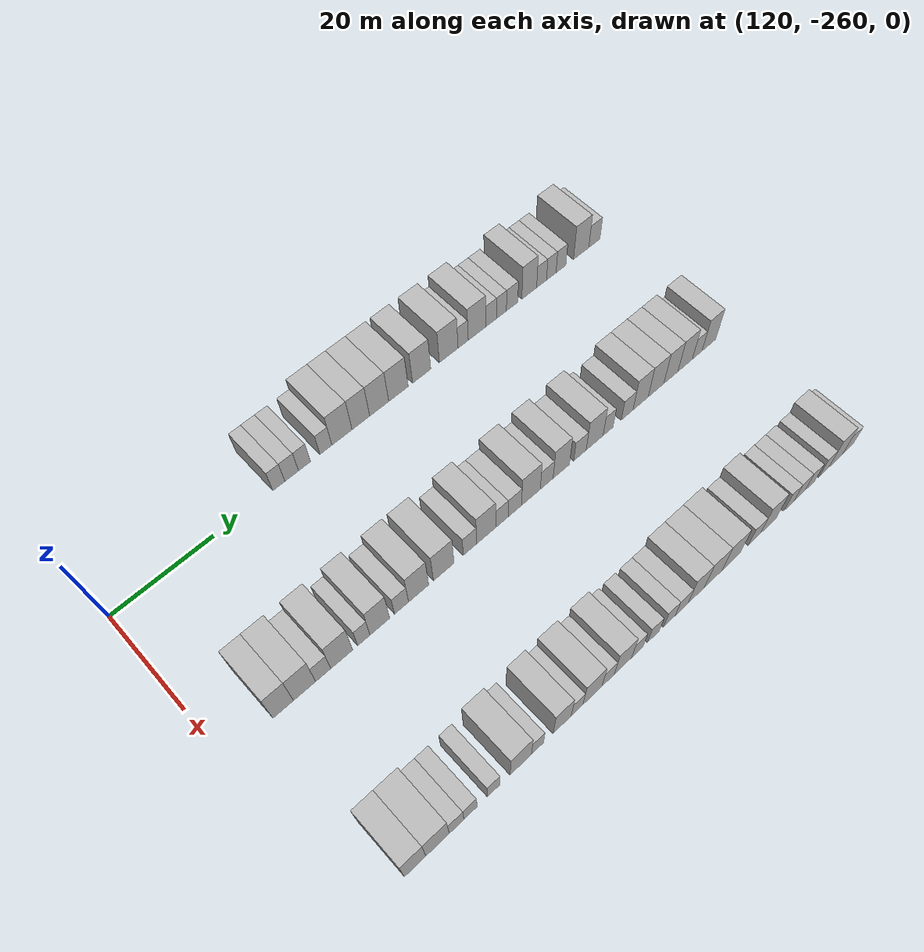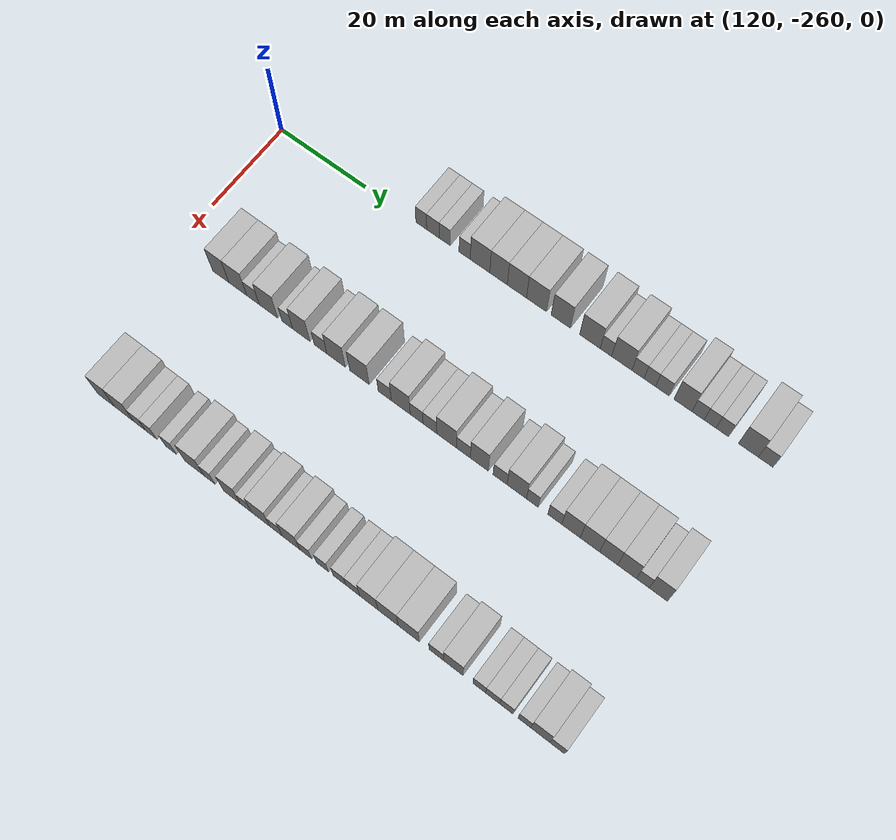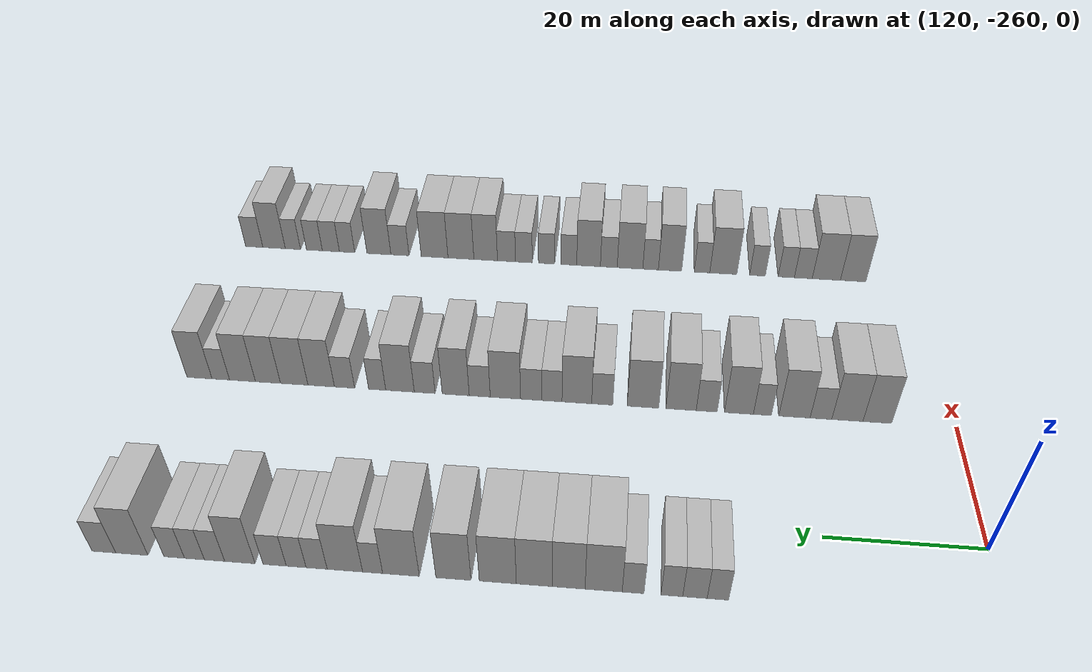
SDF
<sdf version="1.6">
 <world name="default">
  <model name="building_728">
   <static>1</static>
   <pose>115.0000 -226.8545 0 0.000000 0.000000 0.000000</pose>
   <link name="link">
    <pose>0 0 3.00 0 0 0</pose>
    <collision name="collision"><geometry><box><size>10.0000 2.5065 6.0000</size></box></geometry></collision>
    <visual name="visual">
     <cast_shadows>0</cast_shadows>
     <geometry><box><size>10.0000 2.5065 6.0000</size></box></geometry>
     <material>
      <script>
       <uri>model://HANNAS_wall/materials/scripts</uri>
       <uri>model://HANNAS_wall/materials/textures</uri>
       <name>vrc/HANNAS_wall</name>
      </script>
     </material>
    </visual>
   </link>
  </model>
  <model name="building_729">
   <static>1</static>
   <pose>115.0000 -224.1712 0 0.000000 0.000000 0.000000</pose>
   <link name="link">
    <pose>0 0 3.00 0 0 0</pose>
    <collision name="collision"><geometry><box><size>10.0000 2.8600 6.0000</size></box></geometry></collision>
    <visual name="visual">
     <cast_shadows>0</cast_shadows>
     <geometry><box><size>10.0000 2.8600 6.0000</size></box></geometry>
     <material>
      <script>
       <uri>model://HANNAS_wall/materials/scripts</uri>
       <uri>model://HANNAS_wall/materials/textures</uri>
       <name>vrc/HANNAS_wall</name>
      </script>
     </material>
    </visual>
   </link>
  </model>
  <model name="building_730">
   <static>1</static>
   <pose>115.0000 -221.4678 0 0.000000 0.000000 0.000000</pose>
   <link name="link">
    <pose>0 0 3.00 0 0 0</pose>
    <collision name="collision"><geometry><box><size>10.0000 2.5468 6.0000</size></box></geometry></collision>
    <visual name="visual">
     <cast_shadows>0</cast_shadows>
     <geometry><box><size>10.0000 2.5468 6.0000</size></box></geometry>
     <material>
      <script>
       <uri>model://HANNAS_wall/materials/scripts</uri>
       <uri>model://HANNAS_wall/materials/textures</uri>
       <name>vrc/HANNAS_wall</name>
      </script>
     </material>
    </visual>
   </link>
  </model>
  <model name="building_731">
   <static>1</static>
   <pose>115.0000 -216.9096 0 0.000000 0.000000 0.000000</pose>
   <link name="link">
    <pose>0 0 3.00 0 0 0</pose>
    <collision name="collision"><geometry><box><size>10.0000 2.5697 6.0000</size></box></geometry></collision>
    <visual name="visual">
     <cast_shadows>0</cast_shadows>
     <geometry><box><size>10.0000 2.5697 6.0000</size></box></geometry>
     <material>
      <script>
       <uri>model://HANNAS_wall/materials/scripts</uri>
       <uri>model://HANNAS_wall/materials/textures</uri>
       <name>vrc/HANNAS_wall</name>
      </script>
     </material>
    </visual>
   </link>
  </model>
  <model name="building_732">
   <static>1</static>
   <pose>115.0000 -213.4289 0 0.000000 0.000000 0.000000</pose>
   <link name="link">
    <pose>0 0 4.50 0 0 0</pose>
    <collision name="collision"><geometry><box><size>10.0000 4.3916 9.0000</size></box></geometry></collision>
    <visual name="visual">
     <cast_shadows>0</cast_shadows>
     <geometry><box><size>10.0000 4.3916 9.0000</size></box></geometry>
     <material>
      <script>
       <uri>model://HANNAS_wall/materials/scripts</uri>
       <uri>model://HANNAS_wall/materials/textures</uri>
       <name>vrc/HANNAS_wall</name>
      </script>
     </material>
    </visual>
   </link>
  </model>
  <model name="building_733">
   <static>1</static>
   <pose>115.0000 -209.2758 0 0.000000 0.000000 0.000000</pose>
   <link name="link">
    <pose>0 0 4.50 0 0 0</pose>
    <collision name="collision"><geometry><box><size>10.0000 3.9147 9.0000</size></box></geometry></collision>
    <visual name="visual">
     <cast_shadows>0</cast_shadows>
     <geometry><box><size>10.0000 3.9147 9.0000</size></box></geometry>
     <material>
      <script>
       <uri>model://HANNAS_wall/materials/scripts</uri>
       <uri>model://HANNAS_wall/materials/textures</uri>
       <name>vrc/HANNAS_wall</name>
      </script>
     </material>
    </visual>
   </link>
  </model>
  <model name="building_734">
   <static>1</static>
   <pose>115.0000 -205.1833 0 0.000000 0.000000 0.000000</pose>
   <link name="link">
    <pose>0 0 4.50 0 0 0</pose>
    <collision name="collision"><geometry><box><size>10.0000 4.2702 9.0000</size></box></geometry></collision>
    <visual name="visual">
     <cast_shadows>0</cast_shadows>
     <geometry><box><size>10.0000 4.2702 9.0000</size></box></geometry>
     <material>
      <script>
       <uri>model://HANNAS_wall/materials/scripts</uri>
       <uri>model://HANNAS_wall/materials/textures</uri>
       <name>vrc/HANNAS_wall</name>
      </script>
     </material>
    </visual>
   </link>
  </model>
  <model name="building_735">
   <static>1</static>
   <pose>115.0000 -200.8275 0 0.000000 0.000000 0.000000</pose>
   <link name="link">
    <pose>0 0 4.50 0 0 0</pose>
    <collision name="collision"><geometry><box><size>10.0000 4.4414 9.0000</size></box></geometry></collision>
    <visual name="visual">
     <cast_shadows>0</cast_shadows>
     <geometry><box><size>10.0000 4.4414 9.0000</size></box></geometry>
     <material>
      <script>
       <uri>model://HANNAS_wall/materials/scripts</uri>
       <uri>model://HANNAS_wall/materials/textures</uri>
       <name>vrc/HANNAS_wall</name>
      </script>
     </material>
    </visual>
   </link>
  </model>
  <model name="building_736">
   <static>1</static>
   <pose>115.0000 -195.4923 0 0.000000 0.000000 0.000000</pose>
   <link name="link">
    <pose>0 0 4.50 0 0 0</pose>
    <collision name="collision"><geometry><box><size>10.0000 4.2290 9.0000</size></box></geometry></collision>
    <visual name="visual">
     <cast_shadows>0</cast_shadows>
     <geometry><box><size>10.0000 4.2290 9.0000</size></box></geometry>
     <material>
      <script>
       <uri>model://HANNAS_wall/materials/scripts</uri>
       <uri>model://HANNAS_wall/materials/textures</uri>
       <name>vrc/HANNAS_wall</name>
      </script>
     </material>
    </visual>
   </link>
  </model>
  <model name="building_737">
   <static>1</static>
   <pose>115.0000 -189.1521 0 0.000000 0.000000 0.000000</pose>
   <link name="link">
    <pose>0 0 4.50 0 0 0</pose>
    <collision name="collision"><geometry><box><size>10.0000 4.4513 9.0000</size></box></geometry></collision>
    <visual name="visual">
     <cast_shadows>0</cast_shadows>
     <geometry><box><size>10.0000 4.4513 9.0000</size></box></geometry>
     <material>
      <script>
       <uri>model://HANNAS_wall/materials/scripts</uri>
       <uri>model://HANNAS_wall/materials/textures</uri>
       <name>vrc/HANNAS_wall</name>
      </script>
     </material>
    </visual>
   </link>
  </model>
  <model name="building_738">
   <static>1</static>
   <pose>115.0000 -185.7066 0 0.000000 0.000000 0.000000</pose>
   <link name="link">
    <pose>0 0 3.00 0 0 0</pose>
    <collision name="collision"><geometry><box><size>10.0000 2.4397 6.0000</size></box></geometry></collision>
    <visual name="visual">
     <cast_shadows>0</cast_shadows>
     <geometry><box><size>10.0000 2.4397 6.0000</size></box></geometry>
     <material>
      <script>
       <uri>model://HANNAS_wall/materials/scripts</uri>
       <uri>model://HANNAS_wall/materials/textures</uri>
       <name>vrc/HANNAS_wall</name>
      </script>
     </material>
    </visual>
   </link>
  </model>
  <model name="building_739">
   <static>1</static>
   <pose>115.0000 -182.3213 0 0.000000 0.000000 0.000000</pose>
   <link name="link">
    <pose>0 0 4.50 0 0 0</pose>
    <collision name="collision"><geometry><box><size>10.0000 4.3311 9.0000</size></box></geometry></collision>
    <visual name="visual">
     <cast_shadows>0</cast_shadows>
     <geometry><box><size>10.0000 4.3311 9.0000</size></box></geometry>
     <material>
      <script>
       <uri>model://HANNAS_wall/materials/scripts</uri>
       <uri>model://HANNAS_wall/materials/textures</uri>
       <name>vrc/HANNAS_wall</name>
      </script>
     </material>
    </visual>
   </link>
  </model>
  <model name="building_740">
   <static>1</static>
   <pose>115.0000 -178.8613 0 0.000000 0.000000 0.000000</pose>
   <link name="link">
    <pose>0 0 3.00 0 0 0</pose>
    <collision name="collision"><geometry><box><size>10.0000 2.5887 6.0000</size></box></geometry></collision>
    <visual name="visual">
     <cast_shadows>0</cast_shadows>
     <geometry><box><size>10.0000 2.5887 6.0000</size></box></geometry>
     <material>
      <script>
       <uri>model://HANNAS_wall/materials/scripts</uri>
       <uri>model://HANNAS_wall/materials/textures</uri>
       <name>vrc/HANNAS_wall</name>
      </script>
     </material>
    </visual>
   </link>
  </model>
  <model name="building_741">
   <static>1</static>
   <pose>115.0000 -176.3503 0 0.000000 0.000000 0.000000</pose>
   <link name="link">
    <pose>0 0 3.00 0 0 0</pose>
    <collision name="collision"><geometry><box><size>10.0000 2.4334 6.0000</size></box></geometry></collision>
    <visual name="visual">
     <cast_shadows>0</cast_shadows>
     <geometry><box><size>10.0000 2.4334 6.0000</size></box></geometry>
     <material>
      <script>
       <uri>model://HANNAS_wall/materials/scripts</uri>
       <uri>model://HANNAS_wall/materials/textures</uri>
       <name>vrc/HANNAS_wall</name>
      </script>
     </material>
    </visual>
   </link>
  </model>
  <model name="building_742">
   <static>1</static>
   <pose>115.0000 -173.7023 0 0.000000 0.000000 0.000000</pose>
   <link name="link">
    <pose>0 0 3.00 0 0 0</pose>
    <collision name="collision"><geometry><box><size>10.0000 2.8625 6.0000</size></box></geometry></collision>
    <visual name="visual">
     <cast_shadows>0</cast_shadows>
     <geometry><box><size>10.0000 2.8625 6.0000</size></box></geometry>
     <material>
      <script>
       <uri>model://HANNAS_wall/materials/scripts</uri>
       <uri>model://HANNAS_wall/materials/textures</uri>
       <name>vrc/HANNAS_wall</name>
      </script>
     </material>
    </visual>
   </link>
  </model>
  <model name="building_743">
   <static>1</static>
   <pose>115.0000 -169.3935 0 0.000000 0.000000 0.000000</pose>
   <link name="link">
    <pose>0 0 4.50 0 0 0</pose>
    <collision name="collision"><geometry><box><size>10.0000 3.7551 9.0000</size></box></geometry></collision>
    <visual name="visual">
     <cast_shadows>0</cast_shadows>
     <geometry><box><size>10.0000 3.7551 9.0000</size></box></geometry>
     <material>
      <script>
       <uri>model://HANNAS_wall/materials/scripts</uri>
       <uri>model://HANNAS_wall/materials/textures</uri>
       <name>vrc/HANNAS_wall</name>
      </script>
     </material>
    </visual>
   </link>
  </model>
  <model name="building_744">
   <static>1</static>
   <pose>115.0000 -166.2554 0 0.000000 0.000000 0.000000</pose>
   <link name="link">
    <pose>0 0 3.00 0 0 0</pose>
    <collision name="collision"><geometry><box><size>10.0000 2.5211 6.0000</size></box></geometry></collision>
    <visual name="visual">
     <cast_shadows>0</cast_shadows>
     <geometry><box><size>10.0000 2.5211 6.0000</size></box></geometry>
     <material>
      <script>
       <uri>model://HANNAS_wall/materials/scripts</uri>
       <uri>model://HANNAS_wall/materials/textures</uri>
       <name>vrc/HANNAS_wall</name>
      </script>
     </material>
    </visual>
   </link>
  </model>
  <model name="building_745">
   <static>1</static>
   <pose>115.0000 -163.7598 0 0.000000 0.000000 0.000000</pose>
   <link name="link">
    <pose>0 0 3.00 0 0 0</pose>
    <collision name="collision"><geometry><box><size>10.0000 2.4701 6.0000</size></box></geometry></collision>
    <visual name="visual">
     <cast_shadows>0</cast_shadows>
     <geometry><box><size>10.0000 2.4701 6.0000</size></box></geometry>
     <material>
      <script>
       <uri>model://HANNAS_wall/materials/scripts</uri>
       <uri>model://HANNAS_wall/materials/textures</uri>
       <name>vrc/HANNAS_wall</name>
      </script>
     </material>
    </visual>
   </link>
  </model>
  <model name="building_746">
   <static>1</static>
   <pose>115.0000 -161.2407 0 0.000000 0.000000 0.000000</pose>
   <link name="link">
    <pose>0 0 3.00 0 0 0</pose>
    <collision name="collision"><geometry><box><size>10.0000 2.5681 6.0000</size></box></geometry></collision>
    <visual name="visual">
     <cast_shadows>0</cast_shadows>
     <geometry><box><size>10.0000 2.5681 6.0000</size></box></geometry>
     <material>
      <script>
       <uri>model://HANNAS_wall/materials/scripts</uri>
       <uri>model://HANNAS_wall/materials/textures</uri>
       <name>vrc/HANNAS_wall</name>
      </script>
     </material>
    </visual>
   </link>
  </model>
  <model name="building_747">
   <static>1</static>
   <pose>115.0000 -155.9334 0 0.000000 0.000000 0.000000</pose>
   <link name="link">
    <pose>0 0 4.50 0 0 0</pose>
    <collision name="collision"><geometry><box><size>10.0000 4.0466 9.0000</size></box></geometry></collision>
    <visual name="visual">
     <cast_shadows>0</cast_shadows>
     <geometry><box><size>10.0000 4.0466 9.0000</size></box></geometry>
     <material>
      <script>
       <uri>model://HANNAS_wall/materials/scripts</uri>
       <uri>model://HANNAS_wall/materials/textures</uri>
       <name>vrc/HANNAS_wall</name>
      </script>
     </material>
    </visual>
   </link>
  </model>
  <model name="building_748">
   <static>1</static>
   <pose>115.0000 -152.4167 0 0.000000 0.000000 0.000000</pose>
   <link name="link">
    <pose>0 0 3.00 0 0 0</pose>
    <collision name="collision"><geometry><box><size>10.0000 2.9869 6.0000</size></box></geometry></collision>
    <visual name="visual">
     <cast_shadows>0</cast_shadows>
     <geometry><box><size>10.0000 2.9869 6.0000</size></box></geometry>
     <material>
      <script>
       <uri>model://HANNAS_wall/materials/scripts</uri>
       <uri>model://HANNAS_wall/materials/textures</uri>
       <name>vrc/HANNAS_wall</name>
      </script>
     </material>
    </visual>
   </link>
  </model>
  <model name="building_947">
   <static>1</static>
   <pose>145.0000 -249.3122 0 0.000000 0.000000 0.000000</pose>
   <link name="link">
    <pose>0 0 4.50 0 0 0</pose>
    <collision name="collision"><geometry><box><size>10.0000 3.8534 9.0000</size></box></geometry></collision>
    <visual name="visual">
     <cast_shadows>0</cast_shadows>
     <geometry><box><size>10.0000 3.8534 9.0000</size></box></geometry>
     <material>
      <script>
       <uri>model://HANNAS_wall/materials/scripts</uri>
       <uri>model://HANNAS_wall/materials/textures</uri>
       <name>vrc/HANNAS_wall</name>
      </script>
     </material>
    </visual>
   </link>
  </model>
  <model name="building_948">
   <static>1</static>
   <pose>145.0000 -245.2798 0 0.000000 0.000000 0.000000</pose>
   <link name="link">
    <pose>0 0 4.50 0 0 0</pose>
    <collision name="collision"><geometry><box><size>10.0000 4.2114 9.0000</size></box></geometry></collision>
    <visual name="visual">
     <cast_shadows>0</cast_shadows>
     <geometry><box><size>10.0000 4.2114 9.0000</size></box></geometry>
     <material>
      <script>
       <uri>model://HANNAS_wall/materials/scripts</uri>
       <uri>model://HANNAS_wall/materials/textures</uri>
       <name>vrc/HANNAS_wall</name>
      </script>
     </material>
    </visual>
   </link>
  </model>
  <model name="building_949">
   <static>1</static>
   <pose>145.0000 -241.7076 0 0.000000 0.000000 0.000000</pose>
   <link name="link">
    <pose>0 0 3.00 0 0 0</pose>
    <collision name="collision"><geometry><box><size>10.0000 2.9330 6.0000</size></box></geometry></collision>
    <visual name="visual">
     <cast_shadows>0</cast_shadows>
     <geometry><box><size>10.0000 2.9330 6.0000</size></box></geometry>
     <material>
      <script>
       <uri>model://HANNAS_wall/materials/scripts</uri>
       <uri>model://HANNAS_wall/materials/textures</uri>
       <name>vrc/HANNAS_wall</name>
      </script>
     </material>
    </visual>
   </link>
  </model>
  <model name="building_950">
   <static>1</static>
   <pose>145.0000 -238.1058 0 0.000000 0.000000 0.000000</pose>
   <link name="link">
    <pose>0 0 4.50 0 0 0</pose>
    <collision name="collision"><geometry><box><size>10.0000 4.2708 9.0000</size></box></geometry></collision>
    <visual name="visual">
     <cast_shadows>0</cast_shadows>
     <geometry><box><size>10.0000 4.2708 9.0000</size></box></geometry>
     <material>
      <script>
       <uri>model://HANNAS_wall/materials/scripts</uri>
       <uri>model://HANNAS_wall/materials/textures</uri>
       <name>vrc/HANNAS_wall</name>
      </script>
     </material>
    </visual>
   </link>
  </model>
  <model name="building_951">
   <static>1</static>
   <pose>145.0000 -233.7447 0 0.000000 0.000000 0.000000</pose>
   <link name="link">
    <pose>0 0 3.00 0 0 0</pose>
    <collision name="collision"><geometry><box><size>10.0000 2.4513 6.0000</size></box></geometry></collision>
    <visual name="visual">
     <cast_shadows>0</cast_shadows>
     <geometry><box><size>10.0000 2.4513 6.0000</size></box></geometry>
     <material>
      <script>
       <uri>model://HANNAS_wall/materials/scripts</uri>
       <uri>model://HANNAS_wall/materials/textures</uri>
       <name>vrc/HANNAS_wall</name>
      </script>
     </material>
    </visual>
   </link>
  </model>
  <model name="building_952">
   <static>1</static>
   <pose>145.0000 -230.5343 0 0.000000 0.000000 0.000000</pose>
   <link name="link">
    <pose>0 0 4.50 0 0 0</pose>
    <collision name="collision"><geometry><box><size>10.0000 3.9695 9.0000</size></box></geometry></collision>
    <visual name="visual">
     <cast_shadows>0</cast_shadows>
     <geometry><box><size>10.0000 3.9695 9.0000</size></box></geometry>
     <material>
      <script>
       <uri>model://HANNAS_wall/materials/scripts</uri>
       <uri>model://HANNAS_wall/materials/textures</uri>
       <name>vrc/HANNAS_wall</name>
      </script>
     </material>
    </visual>
   </link>
  </model>
  <model name="building_953">
   <static>1</static>
   <pose>145.0000 -226.1108 0 0.000000 0.000000 0.000000</pose>
   <link name="link">
    <pose>0 0 3.00 0 0 0</pose>
    <collision name="collision"><geometry><box><size>10.0000 2.8775 6.0000</size></box></geometry></collision>
    <visual name="visual">
     <cast_shadows>0</cast_shadows>
     <geometry><box><size>10.0000 2.8775 6.0000</size></box></geometry>
     <material>
      <script>
       <uri>model://HANNAS_wall/materials/scripts</uri>
       <uri>model://HANNAS_wall/materials/textures</uri>
       <name>vrc/HANNAS_wall</name>
      </script>
     </material>
    </visual>
   </link>
  </model>
  <model name="building_954">
   <static>1</static>
   <pose>145.0000 -222.5853 0 0.000000 0.000000 0.000000</pose>
   <link name="link">
    <pose>0 0 4.50 0 0 0</pose>
    <collision name="collision"><geometry><box><size>10.0000 4.1735 9.0000</size></box></geometry></collision>
    <visual name="visual">
     <cast_shadows>0</cast_shadows>
     <geometry><box><size>10.0000 4.1735 9.0000</size></box></geometry>
     <material>
      <script>
       <uri>model://HANNAS_wall/materials/scripts</uri>
       <uri>model://HANNAS_wall/materials/textures</uri>
       <name>vrc/HANNAS_wall</name>
      </script>
     </material>
    </visual>
   </link>
  </model>
  <model name="building_955">
   <static>1</static>
   <pose>145.0000 -217.3175 0 0.000000 0.000000 0.000000</pose>
   <link name="link">
    <pose>0 0 4.50 0 0 0</pose>
    <collision name="collision"><geometry><box><size>10.0000 4.3621 9.0000</size></box></geometry></collision>
    <visual name="visual">
     <cast_shadows>0</cast_shadows>
     <geometry><box><size>10.0000 4.3621 9.0000</size></box></geometry>
     <material>
      <script>
       <uri>model://HANNAS_wall/materials/scripts</uri>
       <uri>model://HANNAS_wall/materials/textures</uri>
       <name>vrc/HANNAS_wall</name>
      </script>
     </material>
    </visual>
   </link>
  </model>
  <model name="building_956">
   <static>1</static>
   <pose>145.0000 -211.6747 0 0.000000 0.000000 0.000000</pose>
   <link name="link">
    <pose>0 0 3.00 0 0 0</pose>
    <collision name="collision"><geometry><box><size>10.0000 2.9234 6.0000</size></box></geometry></collision>
    <visual name="visual">
     <cast_shadows>0</cast_shadows>
     <geometry><box><size>10.0000 2.9234 6.0000</size></box></geometry>
     <material>
      <script>
       <uri>model://HANNAS_wall/materials/scripts</uri>
       <uri>model://HANNAS_wall/materials/textures</uri>
       <name>vrc/HANNAS_wall</name>
      </script>
     </material>
    </visual>
   </link>
  </model>
  <model name="building_957">
   <static>1</static>
   <pose>145.0000 -208.1396 0 0.000000 0.000000 0.000000</pose>
   <link name="link">
    <pose>0 0 4.50 0 0 0</pose>
    <collision name="collision"><geometry><box><size>10.0000 4.1469 9.0000</size></box></geometry></collision>
    <visual name="visual">
     <cast_shadows>0</cast_shadows>
     <geometry><box><size>10.0000 4.1469 9.0000</size></box></geometry>
     <material>
      <script>
       <uri>model://HANNAS_wall/materials/scripts</uri>
       <uri>model://HANNAS_wall/materials/textures</uri>
       <name>vrc/HANNAS_wall</name>
      </script>
     </material>
    </visual>
   </link>
  </model>
  <model name="building_958">
   <static>1</static>
   <pose>145.0000 -204.6657 0 0.000000 0.000000 0.000000</pose>
   <link name="link">
    <pose>0 0 3.00 0 0 0</pose>
    <collision name="collision"><geometry><box><size>10.0000 2.8011 6.0000</size></box></geometry></collision>
    <visual name="visual">
     <cast_shadows>0</cast_shadows>
     <geometry><box><size>10.0000 2.8011 6.0000</size></box></geometry>
     <material>
      <script>
       <uri>model://HANNAS_wall/materials/scripts</uri>
       <uri>model://HANNAS_wall/materials/textures</uri>
       <name>vrc/HANNAS_wall</name>
      </script>
     </material>
    </visual>
   </link>
  </model>
  <model name="building_959">
   <static>1</static>
   <pose>145.0000 -201.7667 0 0.000000 0.000000 0.000000</pose>
   <link name="link">
    <pose>0 0 3.00 0 0 0</pose>
    <collision name="collision"><geometry><box><size>10.0000 2.9969 6.0000</size></box></geometry></collision>
    <visual name="visual">
     <cast_shadows>0</cast_shadows>
     <geometry><box><size>10.0000 2.9969 6.0000</size></box></geometry>
     <material>
      <script>
       <uri>model://HANNAS_wall/materials/scripts</uri>
       <uri>model://HANNAS_wall/materials/textures</uri>
       <name>vrc/HANNAS_wall</name>
      </script>
     </material>
    </visual>
   </link>
  </model>
  <model name="building_960">
   <static>1</static>
   <pose>145.0000 -198.1296 0 0.000000 0.000000 0.000000</pose>
   <link name="link">
    <pose>0 0 4.50 0 0 0</pose>
    <collision name="collision"><geometry><box><size>10.0000 4.2773 9.0000</size></box></geometry></collision>
    <visual name="visual">
     <cast_shadows>0</cast_shadows>
     <geometry><box><size>10.0000 4.2773 9.0000</size></box></geometry>
     <material>
      <script>
       <uri>model://HANNAS_wall/materials/scripts</uri>
       <uri>model://HANNAS_wall/materials/textures</uri>
       <name>vrc/HANNAS_wall</name>
      </script>
     </material>
    </visual>
   </link>
  </model>
  <model name="building_961">
   <static>1</static>
   <pose>145.0000 -194.5088 0 0.000000 0.000000 0.000000</pose>
   <link name="link">
    <pose>0 0 3.00 0 0 0</pose>
    <collision name="collision"><geometry><box><size>10.0000 2.9643 6.0000</size></box></geometry></collision>
    <visual name="visual">
     <cast_shadows>0</cast_shadows>
     <geometry><box><size>10.0000 2.9643 6.0000</size></box></geometry>
     <material>
      <script>
       <uri>model://HANNAS_wall/materials/scripts</uri>
       <uri>model://HANNAS_wall/materials/textures</uri>
       <name>vrc/HANNAS_wall</name>
      </script>
     </material>
    </visual>
   </link>
  </model>
  <model name="building_962">
   <static>1</static>
   <pose>145.0000 -191.1102 0 0.000000 0.000000 0.000000</pose>
   <link name="link">
    <pose>0 0 4.50 0 0 0</pose>
    <collision name="collision"><geometry><box><size>10.0000 3.8329 9.0000</size></box></geometry></collision>
    <visual name="visual">
     <cast_shadows>0</cast_shadows>
     <geometry><box><size>10.0000 3.8329 9.0000</size></box></geometry>
     <material>
      <script>
       <uri>model://HANNAS_wall/materials/scripts</uri>
       <uri>model://HANNAS_wall/materials/textures</uri>
       <name>vrc/HANNAS_wall</name>
      </script>
     </material>
    </visual>
   </link>
  </model>
  <model name="building_963">
   <static>1</static>
   <pose>145.0000 -186.7130 0 0.000000 0.000000 0.000000</pose>
   <link name="link">
    <pose>0 0 3.00 0 0 0</pose>
    <collision name="collision"><geometry><box><size>10.0000 2.9615 6.0000</size></box></geometry></collision>
    <visual name="visual">
     <cast_shadows>0</cast_shadows>
     <geometry><box><size>10.0000 2.9615 6.0000</size></box></geometry>
     <material>
      <script>
       <uri>model://HANNAS_wall/materials/scripts</uri>
       <uri>model://HANNAS_wall/materials/textures</uri>
       <name>vrc/HANNAS_wall</name>
      </script>
     </material>
    </visual>
   </link>
  </model>
  <model name="building_964">
   <static>1</static>
   <pose>145.0000 -183.1933 0 0.000000 0.000000 0.000000</pose>
   <link name="link">
    <pose>0 0 4.50 0 0 0</pose>
    <collision name="collision"><geometry><box><size>10.0000 4.0777 9.0000</size></box></geometry></collision>
    <visual name="visual">
     <cast_shadows>0</cast_shadows>
     <geometry><box><size>10.0000 4.0777 9.0000</size></box></geometry>
     <material>
      <script>
       <uri>model://HANNAS_wall/materials/scripts</uri>
       <uri>model://HANNAS_wall/materials/textures</uri>
       <name>vrc/HANNAS_wall</name>
      </script>
     </material>
    </visual>
   </link>
  </model>
  <model name="building_965">
   <static>1</static>
   <pose>145.0000 -179.9291 0 0.000000 0.000000 0.000000</pose>
   <link name="link">
    <pose>0 0 3.00 0 0 0</pose>
    <collision name="collision"><geometry><box><size>10.0000 2.4507 6.0000</size></box></geometry></collision>
    <visual name="visual">
     <cast_shadows>0</cast_shadows>
     <geometry><box><size>10.0000 2.4507 6.0000</size></box></geometry>
     <material>
      <script>
       <uri>model://HANNAS_wall/materials/scripts</uri>
       <uri>model://HANNAS_wall/materials/textures</uri>
       <name>vrc/HANNAS_wall</name>
      </script>
     </material>
    </visual>
   </link>
  </model>
  <model name="building_966">
   <static>1</static>
   <pose>145.0000 -175.2535 0 0.000000 0.000000 0.000000</pose>
   <link name="link">
    <pose>0 0 3.00 0 0 0</pose>
    <collision name="collision"><geometry><box><size>10.0000 2.9005 6.0000</size></box></geometry></collision>
    <visual name="visual">
     <cast_shadows>0</cast_shadows>
     <geometry><box><size>10.0000 2.9005 6.0000</size></box></geometry>
     <material>
      <script>
       <uri>model://HANNAS_wall/materials/scripts</uri>
       <uri>model://HANNAS_wall/materials/textures</uri>
       <name>vrc/HANNAS_wall</name>
      </script>
     </material>
    </visual>
   </link>
  </model>
  <model name="building_967">
   <static>1</static>
   <pose>145.0000 -171.8946 0 0.000000 0.000000 0.000000</pose>
   <link name="link">
    <pose>0 0 4.50 0 0 0</pose>
    <collision name="collision"><geometry><box><size>10.0000 3.8172 9.0000</size></box></geometry></collision>
    <visual name="visual">
     <cast_shadows>0</cast_shadows>
     <geometry><box><size>10.0000 3.8172 9.0000</size></box></geometry>
     <material>
      <script>
       <uri>model://HANNAS_wall/materials/scripts</uri>
       <uri>model://HANNAS_wall/materials/textures</uri>
       <name>vrc/HANNAS_wall</name>
      </script>
     </material>
    </visual>
   </link>
  </model>
  <model name="building_968">
   <static>1</static>
   <pose>145.0000 -167.9979 0 0.000000 0.000000 0.000000</pose>
   <link name="link">
    <pose>0 0 4.50 0 0 0</pose>
    <collision name="collision"><geometry><box><size>10.0000 3.9762 9.0000</size></box></geometry></collision>
    <visual name="visual">
     <cast_shadows>0</cast_shadows>
     <geometry><box><size>10.0000 3.9762 9.0000</size></box></geometry>
     <material>
      <script>
       <uri>model://HANNAS_wall/materials/scripts</uri>
       <uri>model://HANNAS_wall/materials/textures</uri>
       <name>vrc/HANNAS_wall</name>
      </script>
     </material>
    </visual>
   </link>
  </model>
  <model name="building_969">
   <static>1</static>
   <pose>145.0000 -164.1916 0 0.000000 0.000000 0.000000</pose>
   <link name="link">
    <pose>0 0 4.50 0 0 0</pose>
    <collision name="collision"><geometry><box><size>10.0000 3.6365 9.0000</size></box></geometry></collision>
    <visual name="visual">
     <cast_shadows>0</cast_shadows>
     <geometry><box><size>10.0000 3.6365 9.0000</size></box></geometry>
     <material>
      <script>
       <uri>model://HANNAS_wall/materials/scripts</uri>
       <uri>model://HANNAS_wall/materials/textures</uri>
       <name>vrc/HANNAS_wall</name>
      </script>
     </material>
    </visual>
   </link>
  </model>
  <model name="building_970">
   <static>1</static>
   <pose>145.0000 -160.4905 0 0.000000 0.000000 0.000000</pose>
   <link name="link">
    <pose>0 0 4.50 0 0 0</pose>
    <collision name="collision"><geometry><box><size>10.0000 3.7656 9.0000</size></box></geometry></collision>
    <visual name="visual">
     <cast_shadows>0</cast_shadows>
     <geometry><box><size>10.0000 3.7656 9.0000</size></box></geometry>
     <material>
      <script>
       <uri>model://HANNAS_wall/materials/scripts</uri>
       <uri>model://HANNAS_wall/materials/textures</uri>
       <name>vrc/HANNAS_wall</name>
      </script>
     </material>
    </visual>
   </link>
  </model>
  <model name="building_971">
   <static>1</static>
   <pose>145.0000 -157.3275 0 0.000000 0.000000 0.000000</pose>
   <link name="link">
    <pose>0 0 3.00 0 0 0</pose>
    <collision name="collision"><geometry><box><size>10.0000 2.5606 6.0000</size></box></geometry></collision>
    <visual name="visual">
     <cast_shadows>0</cast_shadows>
     <geometry><box><size>10.0000 2.5606 6.0000</size></box></geometry>
     <material>
      <script>
       <uri>model://HANNAS_wall/materials/scripts</uri>
       <uri>model://HANNAS_wall/materials/textures</uri>
       <name>vrc/HANNAS_wall</name>
      </script>
     </material>
    </visual>
   </link>
  </model>
  <model name="building_972">
   <static>1</static>
   <pose>145.0000 -154.2218 0 0.000000 0.000000 0.000000</pose>
   <link name="link">
    <pose>0 0 4.50 0 0 0</pose>
    <collision name="collision"><geometry><box><size>10.0000 3.6507 9.0000</size></box></geometry></collision>
    <visual name="visual">
     <cast_shadows>0</cast_shadows>
     <geometry><box><size>10.0000 3.6507 9.0000</size></box></geometry>
     <material>
      <script>
       <uri>model://HANNAS_wall/materials/scripts</uri>
       <uri>model://HANNAS_wall/materials/textures</uri>
       <name>vrc/HANNAS_wall</name>
      </script>
     </material>
    </visual>
   </link>
  </model>
  <model name="building_1169">
   <static>1</static>
   <pose>175.0000 -249.6092 0 0.000000 0.000000 0.000000</pose>
   <link name="link">
    <pose>0 0 4.50 0 0 0</pose>
    <collision name="collision"><geometry><box><size>10.0000 3.9388 9.0000</size></box></geometry></collision>
    <visual name="visual">
     <cast_shadows>0</cast_shadows>
     <geometry><box><size>10.0000 3.9388 9.0000</size></box></geometry>
     <material>
      <script>
       <uri>model://HANNAS_wall/materials/scripts</uri>
       <uri>model://HANNAS_wall/materials/textures</uri>
       <name>vrc/HANNAS_wall</name>
      </script>
     </material>
    </visual>
   </link>
  </model>
  <model name="building_1170">
   <static>1</static>
   <pose>175.0000 -245.4431 0 0.000000 0.000000 0.000000</pose>
   <link name="link">
    <pose>0 0 4.50 0 0 0</pose>
    <collision name="collision"><geometry><box><size>10.0000 4.3932 9.0000</size></box></geometry></collision>
    <visual name="visual">
     <cast_shadows>0</cast_shadows>
     <geometry><box><size>10.0000 4.3932 9.0000</size></box></geometry>
     <material>
      <script>
       <uri>model://HANNAS_wall/materials/scripts</uri>
       <uri>model://HANNAS_wall/materials/textures</uri>
       <name>vrc/HANNAS_wall</name>
      </script>
     </material>
    </visual>
   </link>
  </model>
  <model name="building_1171">
   <static>1</static>
   <pose>175.0000 -241.8541 0 0.000000 0.000000 0.000000</pose>
   <link name="link">
    <pose>0 0 3.00 0 0 0</pose>
    <collision name="collision"><geometry><box><size>10.0000 2.7849 6.0000</size></box></geometry></collision>
    <visual name="visual">
     <cast_shadows>0</cast_shadows>
     <geometry><box><size>10.0000 2.7849 6.0000</size></box></geometry>
     <material>
      <script>
       <uri>model://HANNAS_wall/materials/scripts</uri>
       <uri>model://HANNAS_wall/materials/textures</uri>
       <name>vrc/HANNAS_wall</name>
      </script>
     </material>
    </visual>
   </link>
  </model>
  <model name="building_1172">
   <static>1</static>
   <pose>175.0000 -239.1870 0 0.000000 0.000000 0.000000</pose>
   <link name="link">
    <pose>0 0 3.00 0 0 0</pose>
    <collision name="collision"><geometry><box><size>10.0000 2.5493 6.0000</size></box></geometry></collision>
    <visual name="visual">
     <cast_shadows>0</cast_shadows>
     <geometry><box><size>10.0000 2.5493 6.0000</size></box></geometry>
     <material>
      <script>
       <uri>model://HANNAS_wall/materials/scripts</uri>
       <uri>model://HANNAS_wall/materials/textures</uri>
       <name>vrc/HANNAS_wall</name>
      </script>
     </material>
    </visual>
   </link>
  </model>
  <model name="building_1173">
   <static>1</static>
   <pose>175.0000 -234.6806 0 0.000000 0.000000 0.000000</pose>
   <link name="link">
    <pose>0 0 3.00 0 0 0</pose>
    <collision name="collision"><geometry><box><size>10.0000 2.4635 6.0000</size></box></geometry></collision>
    <visual name="visual">
     <cast_shadows>0</cast_shadows>
     <geometry><box><size>10.0000 2.4635 6.0000</size></box></geometry>
     <material>
      <script>
       <uri>model://HANNAS_wall/materials/scripts</uri>
       <uri>model://HANNAS_wall/materials/textures</uri>
       <name>vrc/HANNAS_wall</name>
      </script>
     </material>
    </visual>
   </link>
  </model>
  <model name="building_1174">
   <static>1</static>
   <pose>175.0000 -229.3124 0 0.000000 0.000000 0.000000</pose>
   <link name="link">
    <pose>0 0 4.50 0 0 0</pose>
    <collision name="collision"><geometry><box><size>10.0000 4.2729 9.0000</size></box></geometry></collision>
    <visual name="visual">
     <cast_shadows>0</cast_shadows>
     <geometry><box><size>10.0000 4.2729 9.0000</size></box></geometry>
     <material>
      <script>
       <uri>model://HANNAS_wall/materials/scripts</uri>
       <uri>model://HANNAS_wall/materials/textures</uri>
       <name>vrc/HANNAS_wall</name>
      </script>
     </material>
    </visual>
   </link>
  </model>
  <model name="building_1175">
   <static>1</static>
   <pose>175.0000 -225.9503 0 0.000000 0.000000 0.000000</pose>
   <link name="link">
    <pose>0 0 3.00 0 0 0</pose>
    <collision name="collision"><geometry><box><size>10.0000 2.4514 6.0000</size></box></geometry></collision>
    <visual name="visual">
     <cast_shadows>0</cast_shadows>
     <geometry><box><size>10.0000 2.4514 6.0000</size></box></geometry>
     <material>
      <script>
       <uri>model://HANNAS_wall/materials/scripts</uri>
       <uri>model://HANNAS_wall/materials/textures</uri>
       <name>vrc/HANNAS_wall</name>
      </script>
     </material>
    </visual>
   </link>
  </model>
  <model name="building_1176">
   <static>1</static>
   <pose>175.0000 -220.8783 0 0.000000 0.000000 0.000000</pose>
   <link name="link">
    <pose>0 0 4.50 0 0 0</pose>
    <collision name="collision"><geometry><box><size>10.0000 3.6925 9.0000</size></box></geometry></collision>
    <visual name="visual">
     <cast_shadows>0</cast_shadows>
     <geometry><box><size>10.0000 3.6925 9.0000</size></box></geometry>
     <material>
      <script>
       <uri>model://HANNAS_wall/materials/scripts</uri>
       <uri>model://HANNAS_wall/materials/textures</uri>
       <name>vrc/HANNAS_wall</name>
      </script>
     </material>
    </visual>
   </link>
  </model>
  <model name="building_1177">
   <static>1</static>
   <pose>175.0000 -217.7938 0 0.000000 0.000000 0.000000</pose>
   <link name="link">
    <pose>0 0 3.00 0 0 0</pose>
    <collision name="collision"><geometry><box><size>10.0000 2.4765 6.0000</size></box></geometry></collision>
    <visual name="visual">
     <cast_shadows>0</cast_shadows>
     <geometry><box><size>10.0000 2.4765 6.0000</size></box></geometry>
     <material>
      <script>
       <uri>model://HANNAS_wall/materials/scripts</uri>
       <uri>model://HANNAS_wall/materials/textures</uri>
       <name>vrc/HANNAS_wall</name>
      </script>
     </material>
    </visual>
   </link>
  </model>
  <model name="building_1178">
   <static>1</static>
   <pose>175.0000 -214.5188 0 0.000000 0.000000 0.000000</pose>
   <link name="link">
    <pose>0 0 4.50 0 0 0</pose>
    <collision name="collision"><geometry><box><size>10.0000 4.0736 9.0000</size></box></geometry></collision>
    <visual name="visual">
     <cast_shadows>0</cast_shadows>
     <geometry><box><size>10.0000 4.0736 9.0000</size></box></geometry>
     <material>
      <script>
       <uri>model://HANNAS_wall/materials/scripts</uri>
       <uri>model://HANNAS_wall/materials/textures</uri>
       <name>vrc/HANNAS_wall</name>
      </script>
     </material>
    </visual>
   </link>
  </model>
  <model name="building_1179">
   <static>1</static>
   <pose>175.0000 -211.1415 0 0.000000 0.000000 0.000000</pose>
   <link name="link">
    <pose>0 0 3.00 0 0 0</pose>
    <collision name="collision"><geometry><box><size>10.0000 2.6810 6.0000</size></box></geometry></collision>
    <visual name="visual">
     <cast_shadows>0</cast_shadows>
     <geometry><box><size>10.0000 2.6810 6.0000</size></box></geometry>
     <material>
      <script>
       <uri>model://HANNAS_wall/materials/scripts</uri>
       <uri>model://HANNAS_wall/materials/textures</uri>
       <name>vrc/HANNAS_wall</name>
      </script>
     </material>
    </visual>
   </link>
  </model>
  <model name="building_1180">
   <static>1</static>
   <pose>175.0000 -207.9026 0 0.000000 0.000000 0.000000</pose>
   <link name="link">
    <pose>0 0 4.50 0 0 0</pose>
    <collision name="collision"><geometry><box><size>10.0000 3.7968 9.0000</size></box></geometry></collision>
    <visual name="visual">
     <cast_shadows>0</cast_shadows>
     <geometry><box><size>10.0000 3.7968 9.0000</size></box></geometry>
     <material>
      <script>
       <uri>model://HANNAS_wall/materials/scripts</uri>
       <uri>model://HANNAS_wall/materials/textures</uri>
       <name>vrc/HANNAS_wall</name>
      </script>
     </material>
    </visual>
   </link>
  </model>
  <model name="building_1181">
   <static>1</static>
   <pose>175.0000 -204.7314 0 0.000000 0.000000 0.000000</pose>
   <link name="link">
    <pose>0 0 3.00 0 0 0</pose>
    <collision name="collision"><geometry><box><size>10.0000 2.5457 6.0000</size></box></geometry></collision>
    <visual name="visual">
     <cast_shadows>0</cast_shadows>
     <geometry><box><size>10.0000 2.5457 6.0000</size></box></geometry>
     <material>
      <script>
       <uri>model://HANNAS_wall/materials/scripts</uri>
       <uri>model://HANNAS_wall/materials/textures</uri>
       <name>vrc/HANNAS_wall</name>
      </script>
     </material>
    </visual>
   </link>
  </model>
  <model name="building_1182">
   <static>1</static>
   <pose>175.0000 -201.1581 0 0.000000 0.000000 0.000000</pose>
   <link name="link">
    <pose>0 0 3.00 0 0 0</pose>
    <collision name="collision"><geometry><box><size>10.0000 2.6009 6.0000</size></box></geometry></collision>
    <visual name="visual">
     <cast_shadows>0</cast_shadows>
     <geometry><box><size>10.0000 2.6009 6.0000</size></box></geometry>
     <material>
      <script>
       <uri>model://HANNAS_wall/materials/scripts</uri>
       <uri>model://HANNAS_wall/materials/textures</uri>
       <name>vrc/HANNAS_wall</name>
      </script>
     </material>
    </visual>
   </link>
  </model>
  <model name="building_1183">
   <static>1</static>
   <pose>175.0000 -197.5108 0 0.000000 0.000000 0.000000</pose>
   <link name="link">
    <pose>0 0 3.00 0 0 0</pose>
    <collision name="collision"><geometry><box><size>10.0000 2.6937 6.0000</size></box></geometry></collision>
    <visual name="visual">
     <cast_shadows>0</cast_shadows>
     <geometry><box><size>10.0000 2.6937 6.0000</size></box></geometry>
     <material>
      <script>
       <uri>model://HANNAS_wall/materials/scripts</uri>
       <uri>model://HANNAS_wall/materials/textures</uri>
       <name>vrc/HANNAS_wall</name>
      </script>
     </material>
    </visual>
   </link>
  </model>
  <model name="building_1184">
   <static>1</static>
   <pose>175.0000 -194.7000 0 0.000000 0.000000 0.000000</pose>
   <link name="link">
    <pose>0 0 3.00 0 0 0</pose>
    <collision name="collision"><geometry><box><size>10.0000 2.9280 6.0000</size></box></geometry></collision>
    <visual name="visual">
     <cast_shadows>0</cast_shadows>
     <geometry><box><size>10.0000 2.9280 6.0000</size></box></geometry>
     <material>
      <script>
       <uri>model://HANNAS_wall/materials/scripts</uri>
       <uri>model://HANNAS_wall/materials/textures</uri>
       <name>vrc/HANNAS_wall</name>
      </script>
     </material>
    </visual>
   </link>
  </model>
  <model name="building_1185">
   <static>1</static>
   <pose>175.0000 -191.3208 0 0.000000 0.000000 0.000000</pose>
   <link name="link">
    <pose>0 0 4.50 0 0 0</pose>
    <collision name="collision"><geometry><box><size>10.0000 3.8304 9.0000</size></box></geometry></collision>
    <visual name="visual">
     <cast_shadows>0</cast_shadows>
     <geometry><box><size>10.0000 3.8304 9.0000</size></box></geometry>
     <material>
      <script>
       <uri>model://HANNAS_wall/materials/scripts</uri>
       <uri>model://HANNAS_wall/materials/textures</uri>
       <name>vrc/HANNAS_wall</name>
      </script>
     </material>
    </visual>
   </link>
  </model>
  <model name="building_1186">
   <static>1</static>
   <pose>175.0000 -187.2988 0 0.000000 0.000000 0.000000</pose>
   <link name="link">
    <pose>0 0 4.50 0 0 0</pose>
    <collision name="collision"><geometry><box><size>10.0000 4.2135 9.0000</size></box></geometry></collision>
    <visual name="visual">
     <cast_shadows>0</cast_shadows>
     <geometry><box><size>10.0000 4.2135 9.0000</size></box></geometry>
     <material>
      <script>
       <uri>model://HANNAS_wall/materials/scripts</uri>
       <uri>model://HANNAS_wall/materials/textures</uri>
       <name>vrc/HANNAS_wall</name>
      </script>
     </material>
    </visual>
   </link>
  </model>
  <model name="building_1187">
   <static>1</static>
   <pose>175.0000 -183.0077 0 0.000000 0.000000 0.000000</pose>
   <link name="link">
    <pose>0 0 4.50 0 0 0</pose>
    <collision name="collision"><geometry><box><size>10.0000 4.3687 9.0000</size></box></geometry></collision>
    <visual name="visual">
     <cast_shadows>0</cast_shadows>
     <geometry><box><size>10.0000 4.3687 9.0000</size></box></geometry>
     <material>
      <script>
       <uri>model://HANNAS_wall/materials/scripts</uri>
       <uri>model://HANNAS_wall/materials/textures</uri>
       <name>vrc/HANNAS_wall</name>
      </script>
     </material>
    </visual>
   </link>
  </model>
  <model name="building_1188">
   <static>1</static>
   <pose>175.0000 -177.3383 0 0.000000 0.000000 0.000000</pose>
   <link name="link">
    <pose>0 0 3.00 0 0 0</pose>
    <collision name="collision"><geometry><box><size>10.0000 2.9702 6.0000</size></box></geometry></collision>
    <visual name="visual">
     <cast_shadows>0</cast_shadows>
     <geometry><box><size>10.0000 2.9702 6.0000</size></box></geometry>
     <material>
      <script>
       <uri>model://HANNAS_wall/materials/scripts</uri>
       <uri>model://HANNAS_wall/materials/textures</uri>
       <name>vrc/HANNAS_wall</name>
      </script>
     </material>
    </visual>
   </link>
  </model>
  <model name="building_1189">
   <static>1</static>
   <pose>175.0000 -173.8824 0 0.000000 0.000000 0.000000</pose>
   <link name="link">
    <pose>0 0 4.50 0 0 0</pose>
    <collision name="collision"><geometry><box><size>10.0000 3.9417 9.0000</size></box></geometry></collision>
    <visual name="visual">
     <cast_shadows>0</cast_shadows>
     <geometry><box><size>10.0000 3.9417 9.0000</size></box></geometry>
     <material>
      <script>
       <uri>model://HANNAS_wall/materials/scripts</uri>
       <uri>model://HANNAS_wall/materials/textures</uri>
       <name>vrc/HANNAS_wall</name>
      </script>
     </material>
    </visual>
   </link>
  </model>
  <model name="building_1190">
   <static>1</static>
   <pose>175.0000 -168.6394 0 0.000000 0.000000 0.000000</pose>
   <link name="link">
    <pose>0 0 3.00 0 0 0</pose>
    <collision name="collision"><geometry><box><size>10.0000 2.5442 6.0000</size></box></geometry></collision>
    <visual name="visual">
     <cast_shadows>0</cast_shadows>
     <geometry><box><size>10.0000 2.5442 6.0000</size></box></geometry>
     <material>
      <script>
       <uri>model://HANNAS_wall/materials/scripts</uri>
       <uri>model://HANNAS_wall/materials/textures</uri>
       <name>vrc/HANNAS_wall</name>
      </script>
     </material>
    </visual>
   </link>
  </model>
  <model name="building_1191">
   <static>1</static>
   <pose>175.0000 -165.9616 0 0.000000 0.000000 0.000000</pose>
   <link name="link">
    <pose>0 0 3.00 0 0 0</pose>
    <collision name="collision"><geometry><box><size>10.0000 2.8113 6.0000</size></box></geometry></collision>
    <visual name="visual">
     <cast_shadows>0</cast_shadows>
     <geometry><box><size>10.0000 2.8113 6.0000</size></box></geometry>
     <material>
      <script>
       <uri>model://HANNAS_wall/materials/scripts</uri>
       <uri>model://HANNAS_wall/materials/textures</uri>
       <name>vrc/HANNAS_wall</name>
      </script>
     </material>
    </visual>
   </link>
  </model>
  <model name="building_1192">
   <static>1</static>
   <pose>175.0000 -163.2430 0 0.000000 0.000000 0.000000</pose>
   <link name="link">
    <pose>0 0 3.00 0 0 0</pose>
    <collision name="collision"><geometry><box><size>10.0000 2.6260 6.0000</size></box></geometry></collision>
    <visual name="visual">
     <cast_shadows>0</cast_shadows>
     <geometry><box><size>10.0000 2.6260 6.0000</size></box></geometry>
     <material>
      <script>
       <uri>model://HANNAS_wall/materials/scripts</uri>
       <uri>model://HANNAS_wall/materials/textures</uri>
       <name>vrc/HANNAS_wall</name>
      </script>
     </material>
    </visual>
   </link>
  </model>
  <model name="building_1193">
   <static>1</static>
   <pose>175.0000 -159.6657 0 0.000000 0.000000 0.000000</pose>
   <link name="link">
    <pose>0 0 3.00 0 0 0</pose>
    <collision name="collision"><geometry><box><size>10.0000 2.5286 6.0000</size></box></geometry></collision>
    <visual name="visual">
     <cast_shadows>0</cast_shadows>
     <geometry><box><size>10.0000 2.5286 6.0000</size></box></geometry>
     <material>
      <script>
       <uri>model://HANNAS_wall/materials/scripts</uri>
       <uri>model://HANNAS_wall/materials/textures</uri>
       <name>vrc/HANNAS_wall</name>
      </script>
     </material>
    </visual>
   </link>
  </model>
  <model name="building_1194">
   <static>1</static>
   <pose>175.0000 -156.5366 0 0.000000 0.000000 0.000000</pose>
   <link name="link">
    <pose>0 0 4.50 0 0 0</pose>
    <collision name="collision"><geometry><box><size>10.0000 3.7295 9.0000</size></box></geometry></collision>
    <visual name="visual">
     <cast_shadows>0</cast_shadows>
     <geometry><box><size>10.0000 3.7295 9.0000</size></box></geometry>
     <material>
      <script>
       <uri>model://HANNAS_wall/materials/scripts</uri>
       <uri>model://HANNAS_wall/materials/textures</uri>
       <name>vrc/HANNAS_wall</name>
      </script>
     </material>
    </visual>
   </link>
  </model>
  <model name="building_1195">
   <static>1</static>
   <pose>175.0000 -153.2359 0 0.000000 0.000000 0.000000</pose>
   <link name="link">
    <pose>0 0 3.00 0 0 0</pose>
    <collision name="collision"><geometry><box><size>10.0000 2.8719 6.0000</size></box></geometry></collision>
    <visual name="visual">
     <cast_shadows>0</cast_shadows>
     <geometry><box><size>10.0000 2.8719 6.0000</size></box></geometry>
     <material>
      <script>
       <uri>model://HANNAS_wall/materials/scripts</uri>
       <uri>model://HANNAS_wall/materials/textures</uri>
       <name>vrc/HANNAS_wall</name>
      </script>
     </material>
    </visual>
   </link>
  </model>
 </world>
</sdf>
